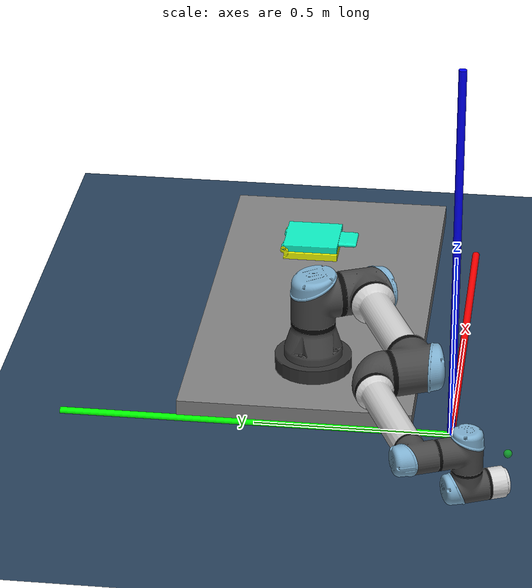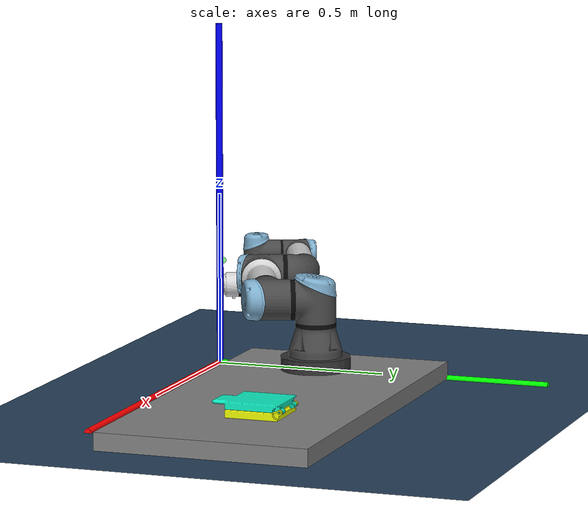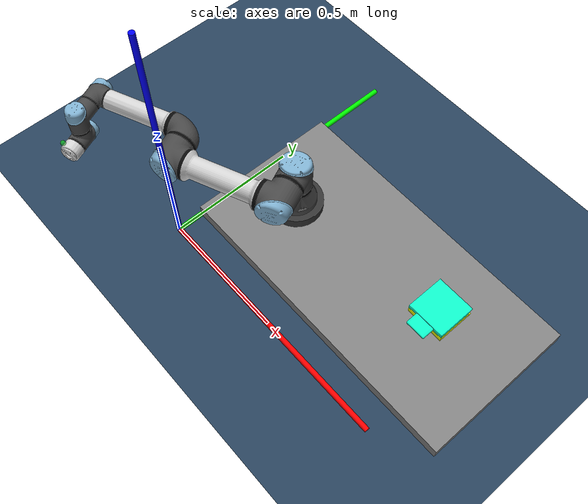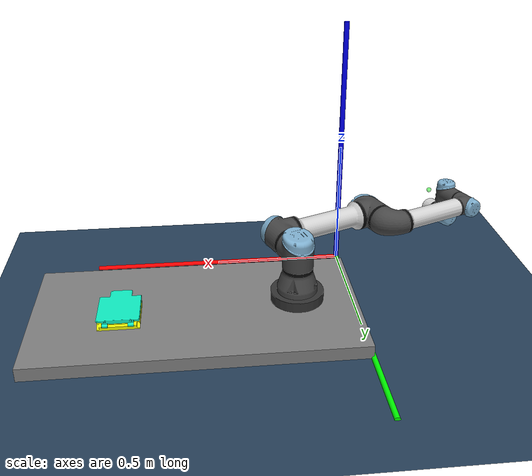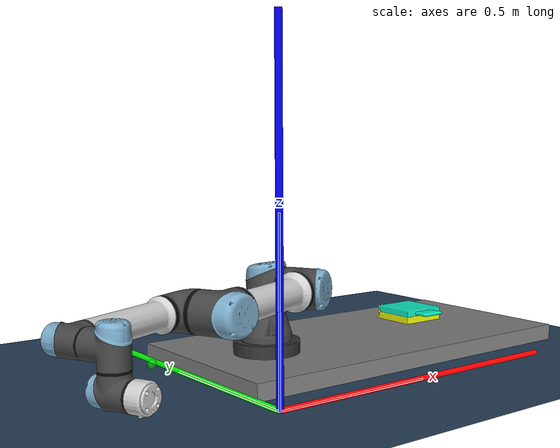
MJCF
<mujoco model="demo scene">

	<compiler angle="radian" autolimits="true"/>

	<option timestep="0.001" integrator="implicitfast" gravity="0 0 -9.82" solver="PGS"/>

	<!-- gravity="0 0 -9.82" -->

	<include file="../assets/universal_robots_ur5e/ur5e.xml" />
	<include file="../assets/universal_robots_ur5e/mounting_plate.xml" />
	<include file="../assets/universal_robots_ur5e/flexcell_tables.xml" />
	<include file="../assets/foldable_block_1/f_block_1.xml" />

	<statistic center="0.3 0 0.3" extent="0.8" meansize="0.08" />

	<visual>
		<headlight diffuse="0.6 0.6 0.6" ambient="0.1 0.1 0.1" specular="0 0 0" />
		<rgba haze="0.15 0.25 0.35 1" />
		<global azimuth="120" elevation="-20" />
	</visual>

	<asset>
		<texture type="skybox" builtin="gradient" rgb1="0.3 0.5 0.7" rgb2="0 0 0" width="512"
			height="3072" />
		<texture type="2d" name="groundplane" builtin="checker" mark="edge" rgb1="0.2 0.3 0.4"
			rgb2="0.1 0.2 0.3" markrgb="0.8 0.8 0.8" width="300" height="300" />
		<material name="groundplane" texture="groundplane" texuniform="true" texrepeat="5 5"
			reflectance="0.2" />
	</asset>

	<worldbody>

		<light pos="0 0 1.5" dir="0 0 -1" directional="true" />
		<geom name="floor" size="0 0 0.05" type="plane" material="groundplane" />
		<geom name="x-aixs" group="2" type="cylinder" contype="0" conaffinity="0"
			fromto="0 0 0 1 0 0" size="0.01" rgba="1 0 0 1" />
		<geom name="y-aixs" group="2" type="cylinder" contype="0" conaffinity="0"
			fromto="0 0 0 0 1 0" size="0.01" rgba="0 1 0 1" />
		<geom name="z-aixs" group="2" type="cylinder" contype="0" conaffinity="0"
			fromto="0 0 0 0 0 1" size="0.01" rgba="0 0 1 1" />

		<body name="mocap" mocap="true" pos="0.22331901 0.37537452 0.08791326">
			<geom name="mocap" type="sphere" size="0.001" />
		</body>

	</worldbody>

	<contact>
		<exclude body1="flange" body2="f1_block_1" />
		<exclude body1="wrist_3_link" body2="f1_block_1" />
		<exclude body1="wrist_2_link" body2="f1_block_1" />
	</contact>

	<equality>
		<weld name="attach" body1="flange" body2="f1_block_1" active="true" relpose = "0 0 0 0 0 0 0" />

	</equality>

	<!-- Actuated boxes -->
  <actuator>      <!--        ctrl input clamp........................        -->
  </actuator>

</mujoco>

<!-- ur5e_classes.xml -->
<mujocoinclude>
	<default class="ur5e">
		<material specular="0.5" shininess="0.25" />
		<joint axis="0 1 0" range="-6.28319 6.28319" armature="0.1" />
		<general gaintype="fixed" biastype="affine" ctrlrange="-6.2831 6.2831" gainprm="2000"
			biasprm="0 -2000 -400" forcerange="-150 150" />
		<default class="size3">
			<default class="size3_limited">
				<joint range="-3.1415 3.1415" />
				<general ctrlrange="-3.1415 3.1415" />
			</default>
		</default>
		<default class="size1">
			<general gainprm="500" biasprm="0 -500 -100" forcerange="-28 28" />
		</default>
		<default class="visual">
			<geom type="mesh" contype="0" conaffinity="0" group="2" />
		</default>
		<default class="collision">
			<geom type="capsule"  contype="0" conaffinity="0" group="4" />
			<default class="eef_collision">
				<geom type="cylinder" />
			</default>
		</default>
		<site size="0.001" rgba="0.5 0.5 0.5 0.3" group="4" />
	</default>
</mujocoinclude>

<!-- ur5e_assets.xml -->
<mujocoinclude>
	<material name="black" rgba="0.033 0.033 0.033 1" />
	<material name="jointgray" rgba="0.278 0.278 0.278 1" />
	<material name="linkgray" rgba="0.82 0.82 0.82 1" />
	<material name="urblue" rgba="0.49 0.678 0.8 1" />

	<mesh file="../assets/universal_robots_ur5e/assets/base_0.obj" />
	<mesh file="../assets/universal_robots_ur5e/assets/base_1.obj" />
	<mesh file="../assets/universal_robots_ur5e/assets/shoulder_0.obj" />
	<mesh file="../assets/universal_robots_ur5e/assets/shoulder_1.obj" />
	<mesh file="../assets/universal_robots_ur5e/assets/shoulder_2.obj" />
	<mesh file="../assets/universal_robots_ur5e/assets/upperarm_0.obj" />
	<mesh file="../assets/universal_robots_ur5e/assets/upperarm_1.obj" />
	<mesh file="../assets/universal_robots_ur5e/assets/upperarm_2.obj" />
	<mesh file="../assets/universal_robots_ur5e/assets/upperarm_3.obj" />
	<mesh file="../assets/universal_robots_ur5e/assets/forearm_0.obj" />
	<mesh file="../assets/universal_robots_ur5e/assets/forearm_1.obj" />
	<mesh file="../assets/universal_robots_ur5e/assets/forearm_2.obj" />
	<mesh file="../assets/universal_robots_ur5e/assets/forearm_3.obj" />
	<mesh file="../assets/universal_robots_ur5e/assets/wrist1_0.obj" />
	<mesh file="../assets/universal_robots_ur5e/assets/wrist1_1.obj" />
	<mesh file="../assets/universal_robots_ur5e/assets/wrist1_2.obj" />
	<mesh file="../assets/universal_robots_ur5e/assets/wrist2_0.obj" />
	<mesh file="../assets/universal_robots_ur5e/assets/wrist2_1.obj" />
	<mesh file="../assets/universal_robots_ur5e/assets/wrist2_2.obj" />
	<mesh file="../assets/universal_robots_ur5e/assets/wrist3.obj" />
</mujocoinclude>

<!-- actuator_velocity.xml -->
<mujocoinclude>
	<velocity class="size3" name="ur5e_shoulder_pan"  joint="shoulder_pan"/>
    <velocity class="size3" name="ur5e_shoulder_lift" joint="shoulder_lift"/>
    <velocity class="size3_limited" name="ur5e_elbow"         joint="elbow"/>
    <velocity class="size1" name="ur5e_wrist_1"       joint="wrist_1"/>
    <velocity class="size1" name="ur5e_wrist_2"       joint="wrist_2"/>
    <velocity class="size1" name="ur5e_wrist_3"       joint="wrist_3"/>
</mujocoinclude>

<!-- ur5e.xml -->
<mujoco model="ur5e">

  <default>
    <include file="../assets/universal_robots_ur5e/ur5e_classes.xml" />
  </default>

  <asset>
    <include file="../assets/universal_robots_ur5e/ur5e_assets.xml" />
  </asset>

  <worldbody>
    <body name="ur5e_base" childclass="ur5e" pos="0.22331901 0.37537452 0.08791326" quat="-0.19858483999999996 -0.00311175 0.0012299899999999998 0.98007799">

      <inertial mass="4" pos="0 0 0" diaginertia="0.00443333156 0.00443333156 0.0072"/>
      <geom mesh="base_0" material="black" class="visual"/>
      <geom mesh="base_1" material="jointgray" class="visual" />
      <body name="shoulder_link" pos="0 0 0.163">
        <inertial mass="3.7" pos="0 0 0" diaginertia="0.0102675 0.0102675 0.00666"/>
        <joint name="shoulder_pan" axis="0 0 1"  damping="0.0"/>
        <geom mesh="shoulder_0" material="urblue" class="visual"/>
        <geom mesh="shoulder_1" material="black" class="visual"/>
        <geom mesh="shoulder_2" material="jointgray" class="visual"/>
        <geom class="collision" size="0.06 0.06" pos="0 0 -0.04"/>
        <body name="upper_arm_link" pos="0 0.138 0" quat="1 0 1 0">
          <inertial mass="8.393" pos="0 0 0.2125" diaginertia="0.133886 0.133886 0.0151074"/>
          <joint name="shoulder_lift" damping="0.0"/>
          <geom mesh="upperarm_0" material="linkgray" class="visual"/>
          <geom mesh="upperarm_1" material="black" class="visual"/>
          <geom mesh="upperarm_2" material="jointgray" class="visual"/>
          <geom mesh="upperarm_3" material="urblue" class="visual"/>
          <geom class="collision" pos="0 -0.04 0" quat="1 1 0 0" size="0.06 0.06"/>
          <geom class="collision" size="0.05 0.2" pos="0 0 0.2"/>
          <body name="forearm_link" pos="0 -0.131 0.425">
            <inertial mass="2.275" pos="0 0 0.196" diaginertia="0.0311796 0.0311796 0.004095"/>
            <joint name="elbow" class="size3_limited" damping="0.0"/>
            <geom mesh="forearm_0" material="urblue" class="visual"/>
            <geom mesh="forearm_1" material="linkgray" class="visual"/>
            <geom mesh="forearm_2" material="black" class="visual"/>
            <geom mesh="forearm_3" material="jointgray" class="visual"/>
            <geom class="collision" pos="0 0.08 0" quat="1 1 0 0" size="0.055 0.06"/>
            <geom class="collision" size="0.038 0.19" pos="0 0 0.2"/>
            <body name="wrist_1_link" pos="0 0 0.392" quat="1 0 1 0">
              <inertial mass="1.219" pos="0 0.127 0" diaginertia="0.0025599 0.0025599 0.0021942"/>
              <joint name="wrist_1" damping="0.0"/>
              <geom mesh="wrist1_0" material="black" class="visual"/>
              <geom mesh="wrist1_1" material="urblue" class="visual"/>
              <geom mesh="wrist1_2" material="jointgray" class="visual"/>
              <geom class="collision" pos="0 0.05 0" quat="1 1 0 0" size="0.04 0.07"/>
              <body name="wrist_2_link" pos="0 0.127 0">
                <inertial mass="1.219" pos="0 0 0.1" diaginertia="0.0025599 0.0025599 0.0021942"/>
                <joint name="wrist_2" axis="0 0 1" damping="0.0"/>
                <geom mesh="wrist2_0" material="black" class="visual"/>
                <geom mesh="wrist2_1" material="urblue" class="visual"/>
                <geom mesh="wrist2_2" material="jointgray" class="visual"/>
                <geom name="1" class="collision" size="0.04 0.06" pos="0 0 0.04"/>
                <geom name="2" class="collision" pos="0 0.02 0.1" quat="1 1 0 0" size="0.04 0.04"/>
                <body name="wrist_3_link" pos="0 0 0.1">
                  <inertial mass="0.1879" pos="0 0.0771683 0" quat="1 0 0 1"
                    diaginertia="0.000132134 9.90863e-05 9.90863e-05"/>
                  <joint name="wrist_3" damping="0.0"/>
                  <geom name="wrist3" material="linkgray" mesh="wrist3" class="visual" />
                  <geom name="eef_collision" class="eef_collision" pos="0 0.08 0" quat="1 1 0 0"
                    size="0.04 0.02" />

                  <!-- Flange position for flick 1 body task -->
                  <body name="flange" pos="0.00 0.10 -0.075" quat="0         0.7071         0.7071    0">

                  <!-- Flange position for flick 2 body task -->

                  <!-- Flange position for flick 3 task -->

                  <!-- for the cloth task (c1) -->

                    <site name="tcp" pos="0 0 0" size="0.01" rgba="0 1 0 0.5" group="2" />
                  </body>

                </body>
              </body>
            </body>
          </body>
        </body>
      </body>
    </body>
  </worldbody>

  <actuator>
    <!-- actuators for position control -->

    <!-- actuators for velocity control -->
    <include file="../assets/universal_robots_ur5e/actuator_velocity.xml"/>

    <!-- actuators for torque control -->

  </actuator>

  <sensor>
    <force  name="force"  site="tcp" />
    <torque name="torque" site="tcp" />
  </sensor>

</mujoco>

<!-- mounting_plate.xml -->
<mujocoinclude>
	<worldbody>
		<body name="ur_mounting_plate" pos="0.22331901 0.37537452 0.06895663">
			<geom name="ur_mounting_plate" type="cylinder" size="0.1 0.01895663"  rgba="0.2 0.2 0.2 1" mass="10"/>
		</body>
	</worldbody>
</mujocoinclude>

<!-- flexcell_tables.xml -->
<mujocoinclude>
	<worldbody>
		<body name="flexcell_top1">
			<geom name="flexcell_top1" type="box" size="0.6 0.3 0.025" pos="0.6 0.4 0.025" margin="0.001"
				solref="0.0001 1" solimp="0.9 0.95 0.001 0.5 4" />
		</body>

	</worldbody>
</mujocoinclude>

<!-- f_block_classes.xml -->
<mujocoinclude>
    <default class="f_block_visual">
    <geom group="2" type="mesh" contype="0" conaffinity="0"/>
    </default>
    <default class="f_block_collision">
    <geom group="3" type="mesh"/>
    </default>
</mujocoinclude>

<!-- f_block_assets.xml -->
<mujocoinclude>
    <!-- block 1 assets -->
    <mesh file="../assets/foldable_block_1/assets/block_1/block_1.obj"/>
    <mesh file="../assets/foldable_block_1/assets/block_1/block_1_collision_0.obj"/>
    <mesh file="../assets/foldable_block_1/assets/block_1/block_1_collision_1.obj"/>
    <mesh file="../assets/foldable_block_1/assets/block_1/block_1_collision_2.obj"/>
    <mesh file="../assets/foldable_block_1/assets/block_1/block_1_collision_3.obj"/>
    <mesh file="../assets/foldable_block_1/assets/block_1/block_1_collision_4.obj"/>
    <mesh file="../assets/foldable_block_1/assets/block_1/block_1_collision_5.obj"/>
    <mesh file="../assets/foldable_block_1/assets/block_1/block_1_collision_6.obj"/>
    <mesh file="../assets/foldable_block_1/assets/block_1/block_1_collision_7.obj"/>

    <!-- block 2 assets -->
    <mesh file="../assets/foldable_block_1/assets/block_2/block_2.obj"/>
    <mesh file="../assets/foldable_block_1/assets/block_2/block_2_collision_0.obj"/>
    <mesh file="../assets/foldable_block_1/assets/block_2/block_2_collision_1.obj"/>
    <mesh file="../assets/foldable_block_1/assets/block_2/block_2_collision_2.obj"/>
    <mesh file="../assets/foldable_block_1/assets/block_2/block_2_collision_3.obj"/>
    <mesh file="../assets/foldable_block_1/assets/block_2/block_2_collision_4.obj"/>
    <mesh file="../assets/foldable_block_1/assets/block_2/block_2_collision_5.obj"/>
    <mesh file="../assets/foldable_block_1/assets/block_2/block_2_collision_6.obj"/>
    <mesh file="../assets/foldable_block_1/assets/block_2/block_2_collision_7.obj"/>
    <mesh file="../assets/foldable_block_1/assets/block_2/block_2_collision_8.obj"/>
    <mesh file="../assets/foldable_block_1/assets/block_2/block_2_collision_9.obj"/>
    <mesh file="../assets/foldable_block_1/assets/block_2/block_2_collision_10.obj"/>
    <mesh file="../assets/foldable_block_1/assets/block_2/block_2_collision_11.obj"/>
    <mesh file="../assets/foldable_block_1/assets/block_2/block_2_collision_12.obj"/>
    <mesh file="../assets/foldable_block_1/assets/block_2/block_2_collision_13.obj"/>
    <mesh file="../assets/foldable_block_1/assets/block_2/block_2_collision_14.obj"/>

</mujocoinclude>

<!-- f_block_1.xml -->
<mujoco model="f_block">

  <default>
    <include file="../assets/foldable_block_1/f_block_classes.xml" />
  </default>

  <asset>
    <include file="../assets/foldable_block_1/f_block_assets.xml" />
  </asset>

  <worldbody>

    <body name="f1_block_1" pos="0.8 0.37537452 0.10" quat="0.5 -0.5 -0.5 0.5 ">
        <joint name="f1_block_free_joint" type="free"/>
        <inertial mass="1" pos="0.075 0.01 -0.075" diaginertia="0.0102675 0.0102675 0.00666"/>
        <geom mesh="block_1" rgba="0.04969316144991731 0.9374098074264089 0.7663034449013295 1" class="f_block_visual"/>
        <geom mesh="block_1_collision_0" rgba="0.04969316144991731 0.9374098074264089 0.7663034449013295 1" class="f_block_collision"/>
        <geom mesh="block_1_collision_1" rgba="0.743716093669547 0.2316001065007981 0.9216810209632792 1" class="f_block_collision"/>
        <geom mesh="block_1_collision_2" rgba="0.8378644262541036 0.0631595487671266 0.5772883119243784 1" class="f_block_collision"/>
        <geom mesh="block_1_collision_3" rgba="0.55182267776058 0.49627483813619744 0.5924762856545812 1" class="f_block_collision"/>
        <geom mesh="block_1_collision_4" rgba="0.7660553621142147 0.7138605078375927 0.4267323037349189 1" class="f_block_collision"/>
        <geom mesh="block_1_collision_5" rgba="0.8082572375455168 0.10578399965795815 0.1920330598775094 1" class="f_block_collision"/>
        <geom mesh="block_1_collision_6" rgba="0.4843090859794702 0.9800503009733361 0.6965162653666385 1" class="f_block_collision"/>
        <geom mesh="block_1_collision_7" rgba="0.13950328260310574 0.578697257060118 0.23151833578383885 1" class="f_block_collision"/>

          <body name="f1_block_2" pos="0 0.042828 -0.150" quat=" 0 1 0 0">
              <inertial mass="1" pos="0.075 0.01 -0.075" diaginertia="0.0102675 0.0102675 0.00666"/>
              <joint name="f_block_1_joint_1" pos="0.151414 0.021414 0" axis="0 0 1"  damping="0.0" range="0 3.1415"/>
              <geom mesh="block_2" rgba="0.9278748131857267 0.9750400105728048 0.011301633201228567 1" class="f_block_visual"/>
              <geom mesh="block_2_collision_0" rgba="0.9278748131857267 0.9750400105728048 0.011301633201228567 1" class="f_block_collision"/>
              <geom mesh="block_2_collision_1" rgba="0.33375377122351035 0.7268079274682246 0.33978252710309587 1" class="f_block_collision"/>
              <geom mesh="block_2_collision_2" rgba="0.6440924342090338 0.9742451184719949 0.5798394669977455 1" class="f_block_collision"/>
              <geom mesh="block_2_collision_3" rgba="0.5669656578747101 0.1654589238177271 0.041036840593084545 1" class="f_block_collision"/>
              <geom mesh="block_2_collision_4" rgba="0.9684390604777308 0.5921099450743562 0.917463620984305 1" class="f_block_collision"/>
              <geom mesh="block_2_collision_5" rgba="0.6724673830008813 0.1950970263357703 0.008809823749446277 1" class="f_block_collision"/>
              <geom mesh="block_2_collision_6" rgba="0.8518830306097929 0.06563841754600352 0.8354793984662352 1" class="f_block_collision"/>
              <geom mesh="block_2_collision_7" rgba="0.8112231977741263 0.88752123124642 0.818457463422128 1" class="f_block_collision"/>
              <geom mesh="block_2_collision_8" rgba="0.7255226473485543 0.15282364594796738 0.41489331031318155 1" class="f_block_collision"/>
              <geom mesh="block_2_collision_9" rgba="0.026777736072874703 0.3940134822219922 0.9963385073324219 1" class="f_block_collision"/>
              <geom mesh="block_2_collision_10" rgba="0.7904621726106753 0.21060817855837755 0.3494399014909447 1" class="f_block_collision"/>
              <geom mesh="block_2_collision_11" rgba="0.8407632955708272 0.6188891906362596 0.2210174511930707 1" class="f_block_collision"/>
              <geom mesh="block_2_collision_12" rgba="0.6923367431980892 0.9175424833753784 0.7976016315359191 1" class="f_block_collision"/>
              <geom mesh="block_2_collision_13" rgba="0.3094059396799437 0.3662935882928817 0.9658657212785459 1" class="f_block_collision"/>
              <geom mesh="block_2_collision_14" rgba="0.761795301723771 0.604652410455299 0.30989459151604026 1" class="f_block_collision"/>
          </body>

    </body>
  </worldbody>

  <actuator>
    <!-- actuators for position control -->

    <!-- actuators for velocity control -->

    <!-- actuators for torque control -->

  </actuator>

</mujoco>
